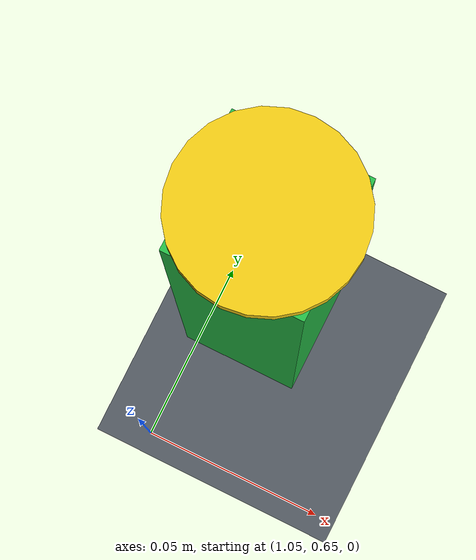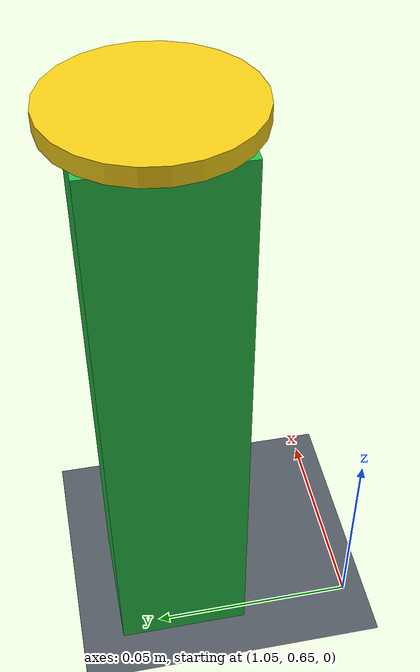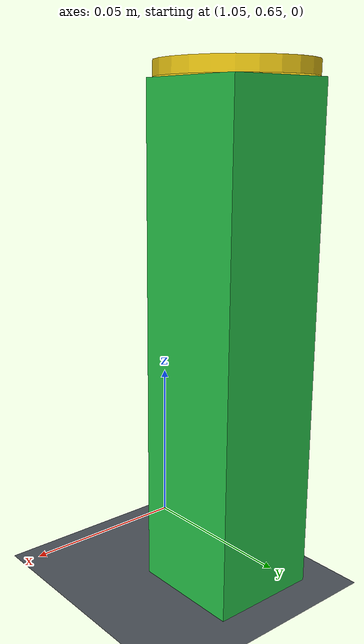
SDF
<sdf version="1.9">
 <world name="pick_and_place">
  <model name="ground">
   <static>true</static>
   <link name="ground_link">
    <collision name="ground_collision">
     <geometry><plane><normal>0 0 1</normal><size>8 8</size></plane></geometry>
    </collision>
    <visual name="ground_visual">
     <geometry><plane><normal>0 0 1</normal><size>8 8</size></plane></geometry>
     <material><diffuse>0.32 0.35 0.38 1</diffuse></material>
    </visual>
   </link>
  </model>
  <model name="place_support">
   <static>true</static>
   <pose>1.063 0.694 0.070 0 0 1.570796327</pose>
   <link name="support_link">
    <collision name="place_support_collision">
     <geometry><box><size>0.032 0.032 0.140</size></box></geometry>
     <surface>
      <friction><ode><mu>0.9</mu><mu2>0.9</mu2></ode></friction>
      <contact><ode><kp>100000</kp><kd>1.0</kd><max_vel>0.01</max_vel><min_depth>0.0001</min_depth></ode></contact>
     </surface>
    </collision>
    <visual name="place_support_visual">
     <geometry><box><size>0.032 0.032 0.140</size></box></geometry>
     <material><diffuse>0.15 0.75 0.28 1</diffuse></material>
    </visual>
    <visual name="target_ring">
     <pose>0 0 0.072 0 0 0</pose>
     <geometry><cylinder><radius>0.021</radius><length>0.004</length></cylinder></geometry>
     <material><diffuse>0.95 0.8 0.08 1</diffuse></material>
    </visual>
    <sensor name="place_support_contact_sensor" type="contact">
     <contact><collision>place_support_collision</collision><topic>/place_support/contacts</topic></contact>
     <always_on>true</always_on>
     <update_rate>200</update_rate>
    </sensor>
   </link>
  </model>
 </world>
</sdf>
